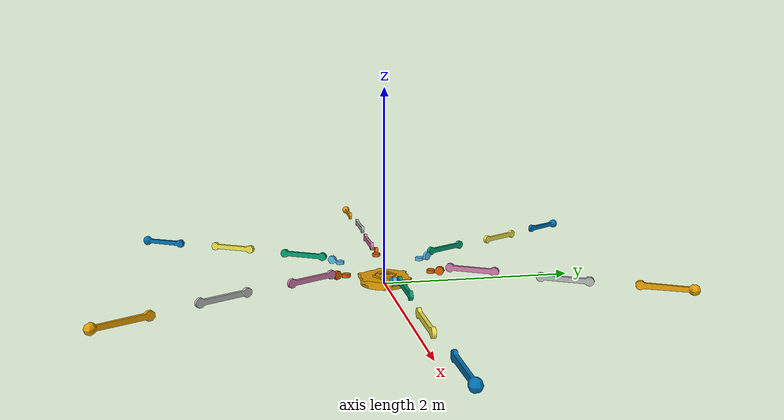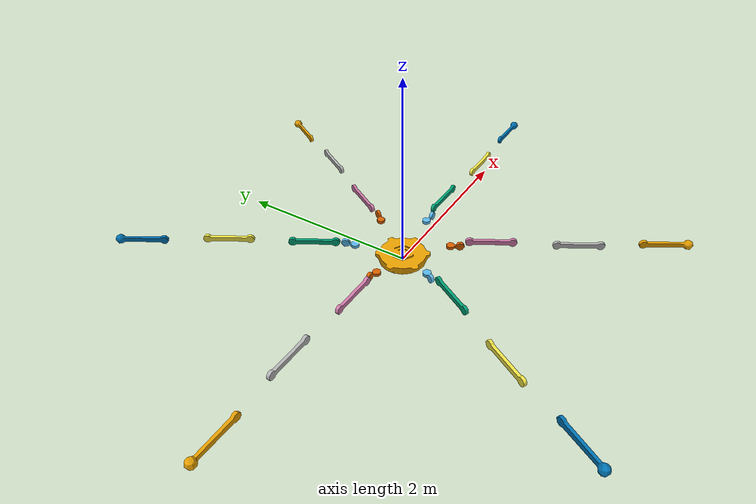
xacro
<?xml version="1.0"?>
<robot name="spider_robot" xmlns:xacro="http://www.ros.org/wiki/xacro">
  <xacro:arg name="mesh_root" default="../meshes"/>
  <xacro:property name="mesh_root" value="$(arg mesh_root)"/>

  <xacro:include filename="spider_robot_leg_macro.xacro"/>

  <xacro:mesh_link
    name="base_link"
    visual_mesh="body_visual.obj"
    collision_mesh="body_collision.stl"
    mass="${body_mass}"
    size_x="${body_size_x}"
    size_y="${body_size_y}"
    size_z="${body_size_z}"
    inertial_xyz="${body_inertial_xyz}"/>

  <xacro:spider_leg prefix="leg_01" mount_yaw="0.0"/>
  <xacro:spider_leg prefix="leg_02" mount_yaw="${pi / 3.0}"/>
  <xacro:spider_leg prefix="leg_03" mount_yaw="${2.0 * pi / 3.0}"/>
  <xacro:spider_leg prefix="leg_04" mount_yaw="${pi}"/>
  <xacro:spider_leg prefix="leg_05" mount_yaw="${4.0 * pi / 3.0}"/>
  <xacro:spider_leg prefix="leg_06" mount_yaw="${5.0 * pi / 3.0}"/>
</robot>

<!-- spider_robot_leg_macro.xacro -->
<robot xmlns:xacro="http://www.ros.org/wiki/xacro">
  <xacro:property name="body_mass" value="4.0"/>
  <xacro:property name="shoulder_mass" value="0.15"/>
  <xacro:property name="inner_mass" value="0.18"/>
  <xacro:property name="middle_mass" value="0.18"/>
  <xacro:property name="outer_mass" value="0.16"/>

  <xacro:property name="body_size_x" value="0.576834"/>
  <xacro:property name="body_size_y" value="0.510792"/>
  <xacro:property name="body_size_z" value="0.076321"/>
  <xacro:property name="shoulder_size_x" value="0.182447"/>
  <xacro:property name="shoulder_size_y" value="0.084644"/>
  <xacro:property name="shoulder_size_z" value="0.084645"/>
  <xacro:property name="inner_size_x" value="0.528000"/>
  <xacro:property name="inner_size_y" value="0.032601"/>
  <xacro:property name="inner_size_z" value="0.084640"/>
  <xacro:property name="middle_size_x" value="0.528000"/>
  <xacro:property name="middle_size_y" value="0.032601"/>
  <xacro:property name="middle_size_z" value="0.084640"/>
  <xacro:property name="outer_size_x" value="0.538147"/>
  <xacro:property name="outer_size_y" value="0.088318"/>
  <xacro:property name="outer_size_z" value="0.097835"/>

  <xacro:property name="body_inertial_xyz" value="0 0 0.006181"/>
  <xacro:property name="shoulder_inertial_xyz" value="0.048902 0 0.032601"/>
  <xacro:property name="inner_inertial_xyz" value="0.22168 0.0163 0"/>
  <xacro:property name="middle_inertial_xyz" value="0.22168 -0.0163 0"/>
  <xacro:property name="outer_inertial_xyz" value="0.226796 0.01611 -0.000166"/>

  <xacro:property name="base_to_shoulder_x" value="0.245982"/>
  <xacro:property name="base_to_shoulder_z" value="0.081401"/>
  <xacro:property name="shoulder_to_inner_xyz" value="0.097802 0 0.032601"/>
  <xacro:property name="inner_to_middle_xyz" value="0.443974 0 0"/>
  <xacro:property name="middle_to_outer_xyz" value="0.443098 0 0"/>

  <xacro:property name="shoulder_joint_lower" value="-1.5708"/>
  <xacro:property name="shoulder_joint_upper" value="1.5708"/>
  <xacro:property name="inner_joint_lower" value="-2.6180"/>
  <xacro:property name="inner_joint_upper" value="2.6180"/>
  <xacro:property name="pitch_joint_lower" value="-2.9671"/>
  <xacro:property name="pitch_joint_upper" value="2.9671"/>
  <xacro:property name="joint_effort" value="40.0"/>
  <xacro:property name="joint_velocity" value="4.0"/>
  <xacro:property name="joint_damping" value="0.2"/>
  <xacro:property name="joint_friction" value="0.0"/>

  <xacro:macro name="box_inertial" params="mass size_x size_y size_z origin_xyz">
    <inertial>
      <origin xyz="${origin_xyz}" rpy="0 0 0"/>
      <mass value="${mass}"/>
      <inertia
        ixx="${mass * (size_y * size_y + size_z * size_z) / 12.0}"
        ixy="0.0"
        ixz="0.0"
        iyy="${mass * (size_x * size_x + size_z * size_z) / 12.0}"
        iyz="0.0"
        izz="${mass * (size_x * size_x + size_y * size_y) / 12.0}"/>
    </inertial>
  </xacro:macro>

  <xacro:macro name="mesh_link" params="name visual_mesh collision_mesh mass size_x size_y size_z inertial_xyz">
    <link name="${name}">
      <xacro:box_inertial
        mass="${mass}"
        size_x="${size_x}"
        size_y="${size_y}"
        size_z="${size_z}"
        origin_xyz="${inertial_xyz}"/>

      <visual>
        <origin xyz="0 0 0" rpy="0 0 0"/>
        <geometry>
          <mesh filename="${mesh_root}/visual/${visual_mesh}" scale="1 1 1"/>
        </geometry>
      </visual>

      <collision>
        <origin xyz="0 0 0" rpy="0 0 0"/>
        <geometry>
          <mesh filename="${mesh_root}/collision/${collision_mesh}" scale="1 1 1"/>
        </geometry>
      </collision>
    </link>
  </xacro:macro>

  <xacro:macro name="spider_leg" params="prefix mount_yaw">
    <xacro:mesh_link
      name="${prefix}_shoulder_link"
      visual_mesh="shoulder_visual.obj"
      collision_mesh="shoulder_collision.stl"
      mass="${shoulder_mass}"
      size_x="${shoulder_size_x}"
      size_y="${shoulder_size_y}"
      size_z="${shoulder_size_z}"
      inertial_xyz="${shoulder_inertial_xyz}"/>

    <xacro:mesh_link
      name="${prefix}_inner_link"
      visual_mesh="leg_inner_visual.obj"
      collision_mesh="leg_inner_collision.stl"
      mass="${inner_mass}"
      size_x="${inner_size_x}"
      size_y="${inner_size_y}"
      size_z="${inner_size_z}"
      inertial_xyz="${inner_inertial_xyz}"/>

    <xacro:mesh_link
      name="${prefix}_middle_link"
      visual_mesh="leg_middle_visual.obj"
      collision_mesh="leg_middle_collision.stl"
      mass="${middle_mass}"
      size_x="${middle_size_x}"
      size_y="${middle_size_y}"
      size_z="${middle_size_z}"
      inertial_xyz="${middle_inertial_xyz}"/>

    <xacro:mesh_link
      name="${prefix}_outer_link"
      visual_mesh="leg_outer_visual.obj"
      collision_mesh="leg_outer_collision.stl"
      mass="${outer_mass}"
      size_x="${outer_size_x}"
      size_y="${outer_size_y}"
      size_z="${outer_size_z}"
      inertial_xyz="${outer_inertial_xyz}"/>

    <joint name="${prefix}_shoulder_yaw_joint" type="revolute">
      <origin
        xyz="${base_to_shoulder_x * cos(mount_yaw)} ${base_to_shoulder_x * sin(mount_yaw)} ${base_to_shoulder_z}"
        rpy="0 0 ${mount_yaw}"/>
      <parent link="base_link"/>
      <child link="${prefix}_shoulder_link"/>
      <axis xyz="0 0 1"/>
      <limit
        lower="${shoulder_joint_lower}"
        upper="${shoulder_joint_upper}"
        effort="${joint_effort}"
        velocity="${joint_velocity}"/>
      <dynamics damping="${joint_damping}" friction="${joint_friction}"/>
    </joint>

    <joint name="${prefix}_inner_pitch_joint" type="revolute">
      <origin xyz="${shoulder_to_inner_xyz}" rpy="0 0 0"/>
      <parent link="${prefix}_shoulder_link"/>
      <child link="${prefix}_inner_link"/>
      <axis xyz="0 1 0"/>
      <limit
        lower="${inner_joint_lower}"
        upper="${inner_joint_upper}"
        effort="${joint_effort}"
        velocity="${joint_velocity}"/>
      <dynamics damping="${joint_damping}" friction="${joint_friction}"/>
    </joint>

    <joint name="${prefix}_middle_pitch_joint" type="revolute">
      <origin xyz="${inner_to_middle_xyz}" rpy="0 0 0"/>
      <parent link="${prefix}_inner_link"/>
      <child link="${prefix}_middle_link"/>
      <axis xyz="0 1 0"/>
      <limit
        lower="${pitch_joint_lower}"
        upper="${pitch_joint_upper}"
        effort="${joint_effort}"
        velocity="${joint_velocity}"/>
      <dynamics damping="${joint_damping}" friction="${joint_friction}"/>
    </joint>

    <joint name="${prefix}_outer_pitch_joint" type="revolute">
      <origin xyz="${middle_to_outer_xyz}" rpy="0 0 0"/>
      <parent link="${prefix}_middle_link"/>
      <child link="${prefix}_outer_link"/>
      <axis xyz="0 1 0"/>
      <limit
        lower="${pitch_joint_lower}"
        upper="${pitch_joint_upper}"
        effort="${joint_effort}"
        velocity="${joint_velocity}"/>
      <dynamics damping="${joint_damping}" friction="${joint_friction}"/>
    </joint>
  </xacro:macro>
</robot>
